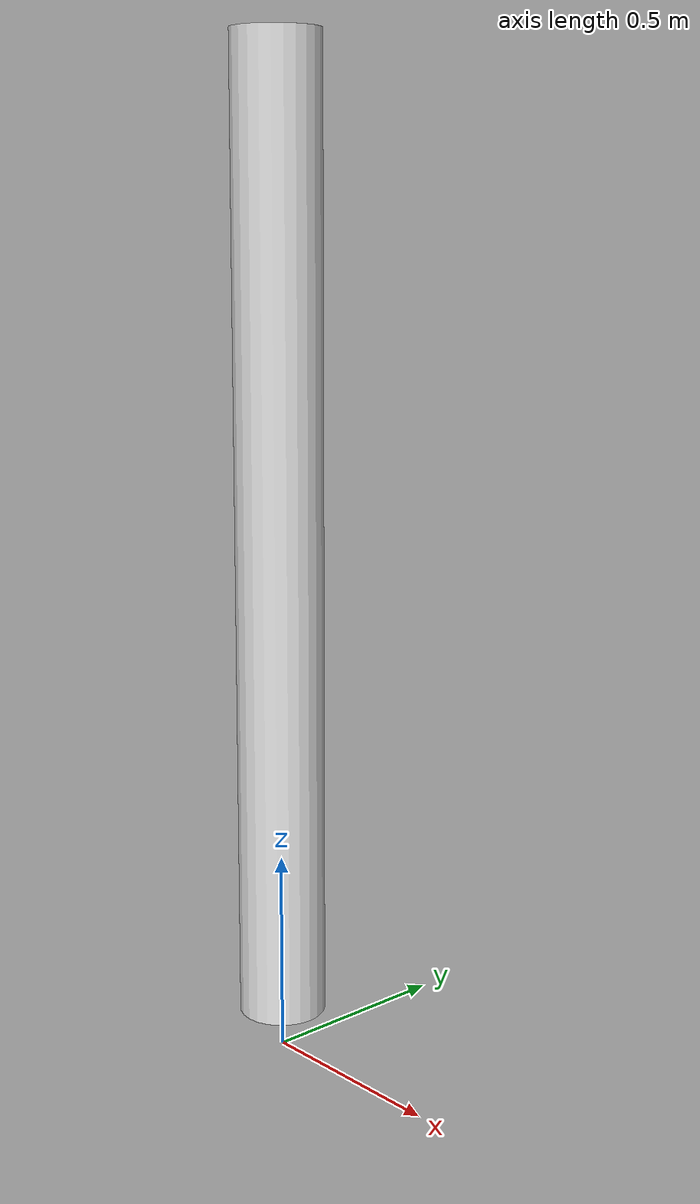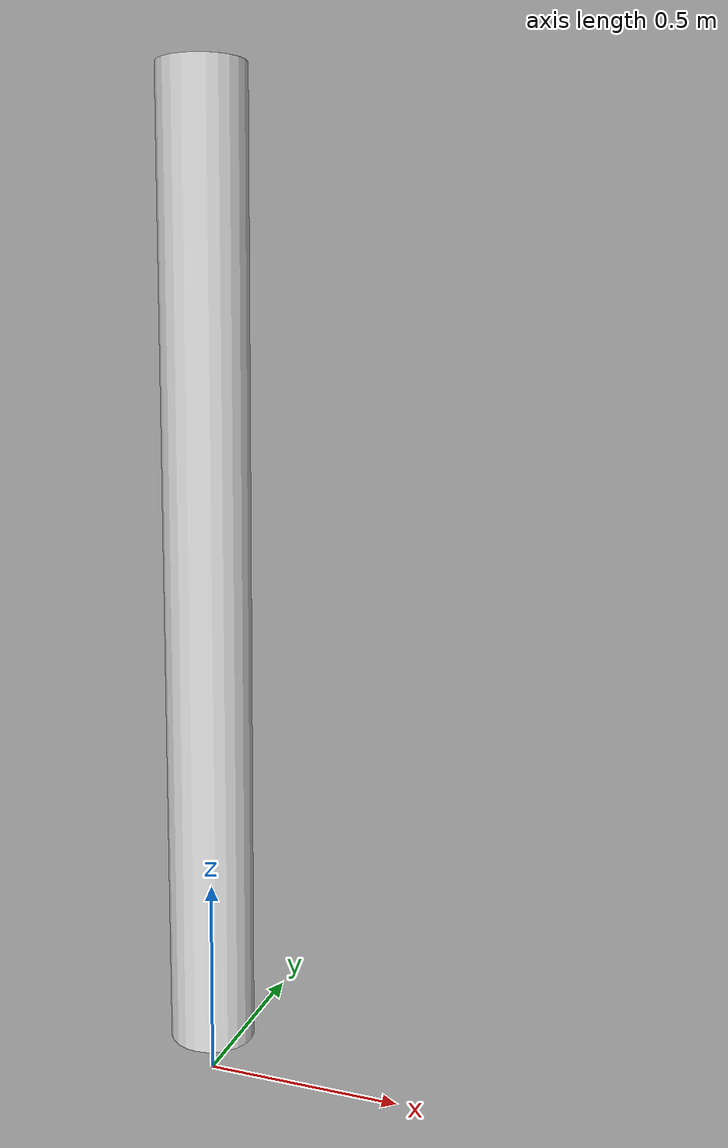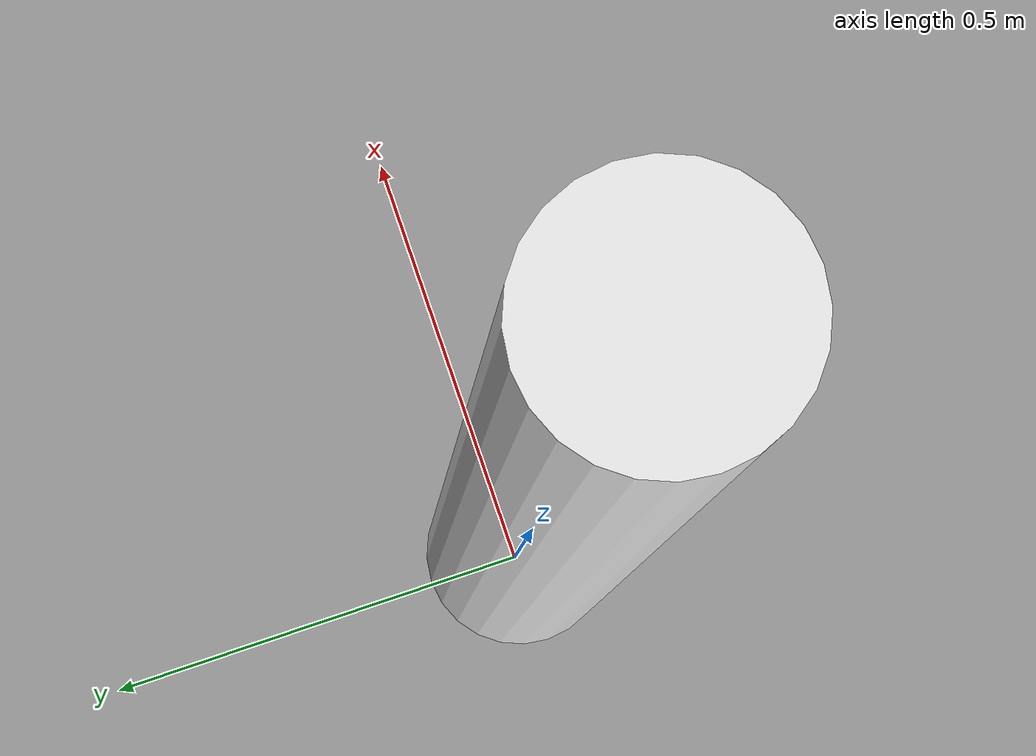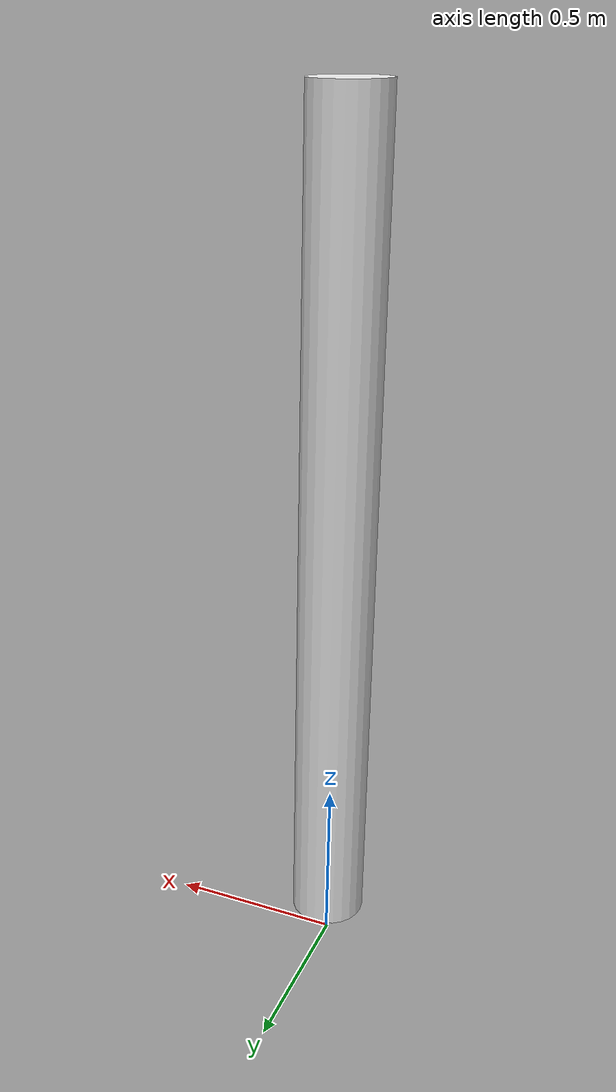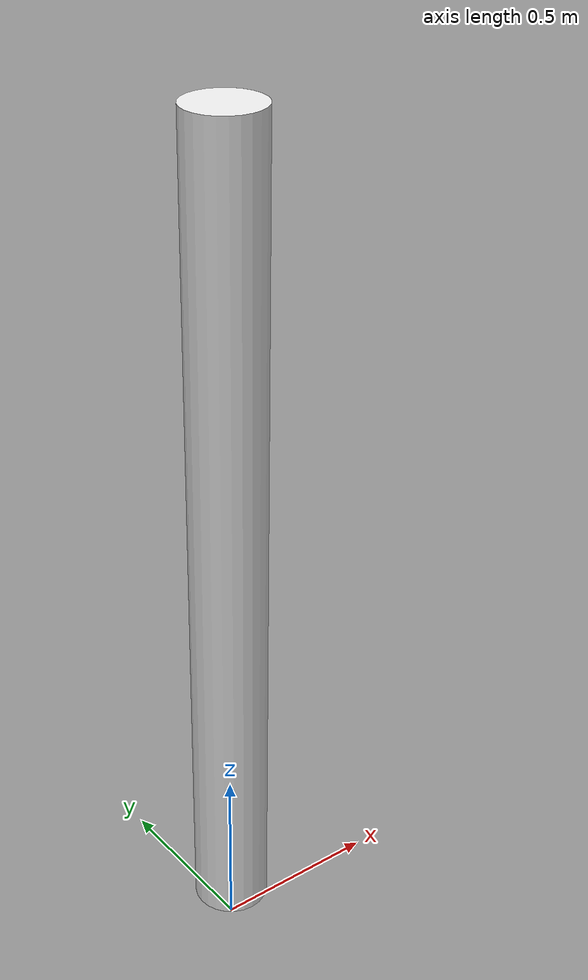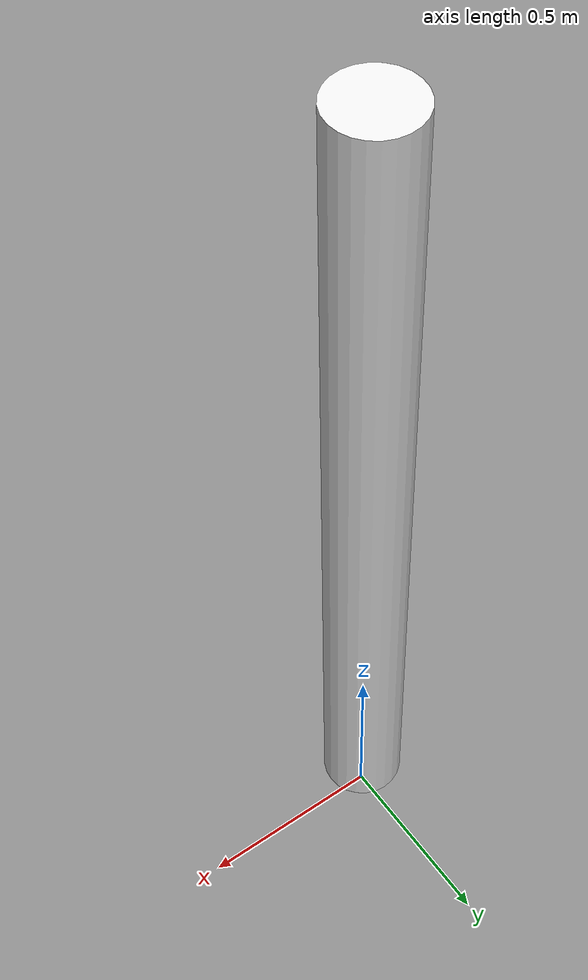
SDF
<?xml version="1.0" ?>
<sdf version="1.5">
  <model name="AIGC2_pole_20cm">
    <static>true</static>
    <link name="link">
      <pose>0 0 1.3 0 0 0</pose>
      <collision name="collision">
        <geometry>
            <cylinder>
              <radius>.108</radius>
              <length>2.6</length>
            </cylinder>
        </geometry>
      </collision>
      <visual name="visual">
        <cast_shadows>true</cast_shadows>
        <geometry>
            <cylinder>
              <radius>.108</radius>
              <length>2.4</length>
            </cylinder>
        </geometry>
        <material>
          <script>
            <name>Gazebo/White</name>
            <uri>file://media/materials/scripts/gazebo.material</uri>
          </script>
        </material>
      </visual>
    </link>
  </model>
</sdf>
